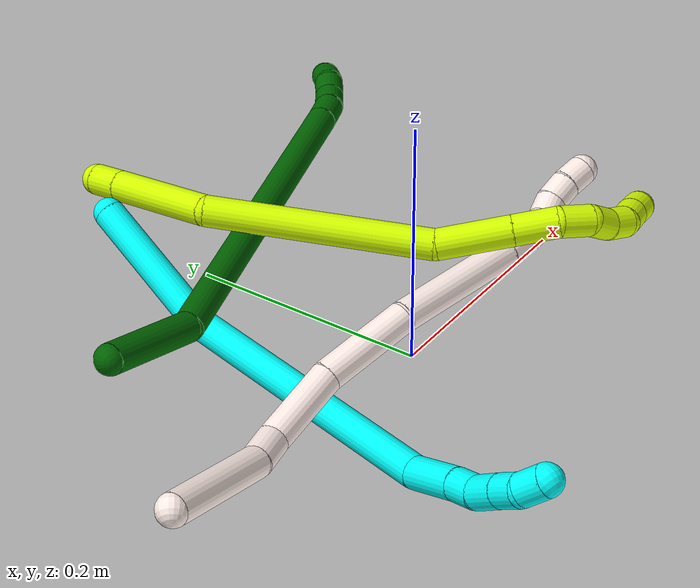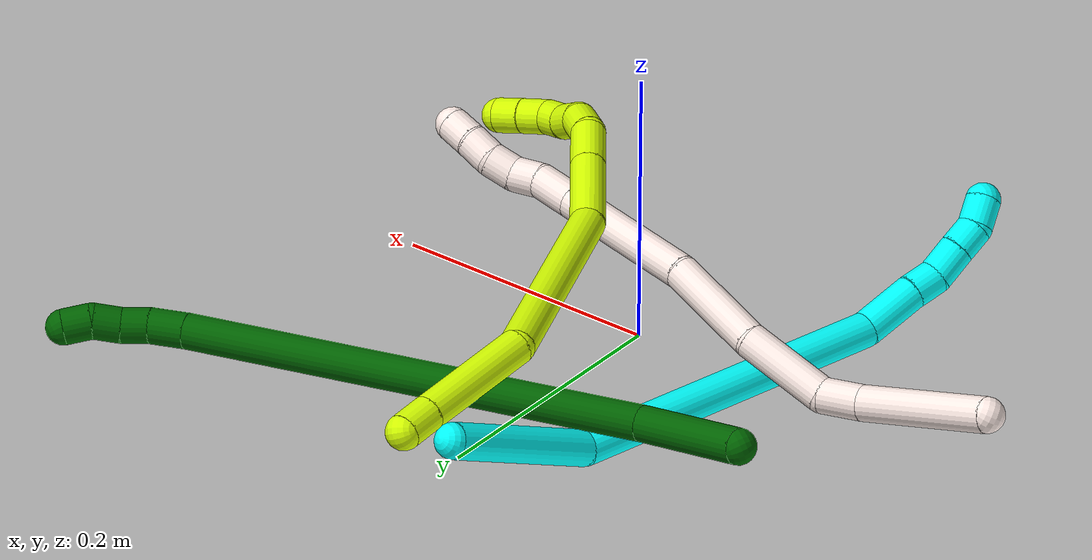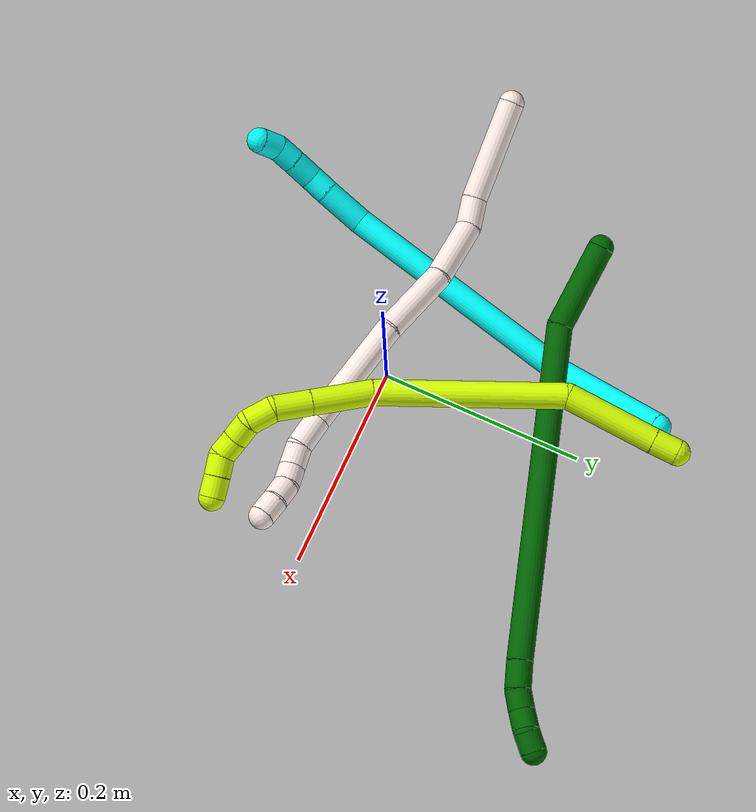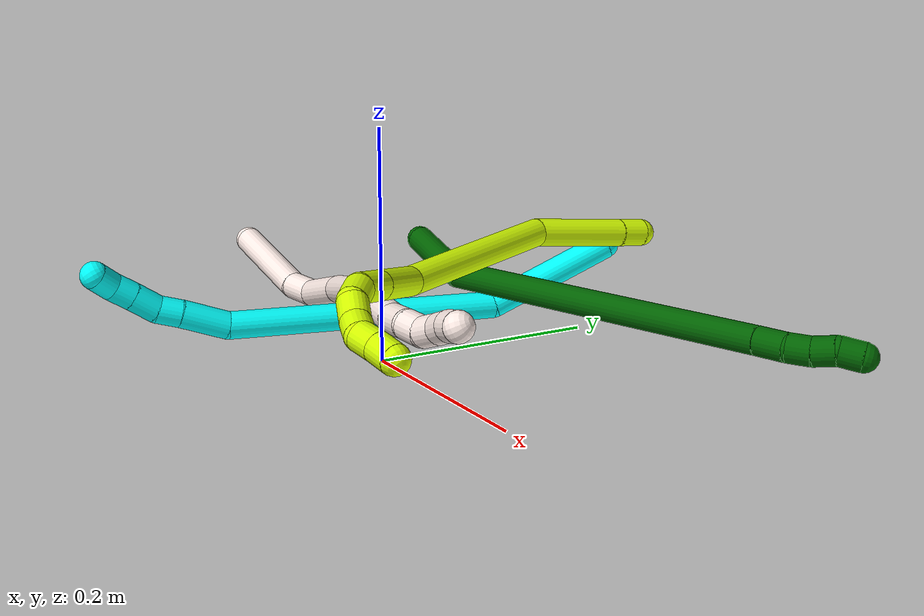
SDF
<sdf version="1.7">
 <world name="default">
  <model name="3">
   <static>0</static>
   <link name="3">
    <collision name="collision-cylinder-e_1_1_4">
     <pose>0.002173 -0.004572 -0.060671 3.06637 0.035703 0.886072</pose>
     <geometry><cylinder><radius>0.0125</radius><length>0.121763</length></cylinder></geometry>
     <surface>
      <friction><ode><mu>1.16</mu><mu2>1.16</mu2><slip1>0</slip1><slip2>0</slip2></ode></friction>
      <contact><ode><kp>1e+06</kp><kd>1</kd><max_vel>0</max_vel><min_depth>0.001</min_depth></ode></contact>
     </surface>
    </collision>
    <visual name="visual-cylinder-e_1_1_4">
     <pose>0.002173 -0.004572 -0.060671 3.06637 0.035703 0.886072</pose>
     <geometry><cylinder><radius>0.0125</radius><length>0.121763</length></cylinder></geometry>
     <material><ambient>0.003922 1 0.996078 1</ambient></material>
    </visual>
    <collision name="collision-cylinder-e_2_4_5">
     <pose>0.005239 -0.067726 -0.230075 2.64741 0.007229 0.028657</pose>
     <geometry><cylinder><radius>0.0125</radius><length>0.247027</length></cylinder></geometry>
     <surface>
      <friction><ode><mu>1.16</mu><mu2>1.16</mu2><slip1>0</slip1><slip2>0</slip2></ode></friction>
      <contact><ode><kp>1e+06</kp><kd>1</kd><max_vel>0</max_vel><min_depth>0.001</min_depth></ode></contact>
     </surface>
    </collision>
    <visual name="visual-cylinder-e_2_4_5">
     <pose>0.005239 -0.067726 -0.230075 2.64741 0.007229 0.028657</pose>
     <geometry><cylinder><radius>0.0125</radius><length>0.247027</length></cylinder></geometry>
     <material><ambient>0.003922 1 0.996078 1</ambient></material>
    </visual>
    <collision name="collision-cylinder-e_3_5_6">
     <pose>0.006134 -0.142408 -0.353583 2.31328 9.4e-05 0.000213</pose>
     <geometry><cylinder><radius>0.0125</radius><length>0.043704</length></cylinder></geometry>
     <surface>
      <friction><ode><mu>1.16</mu><mu2>1.16</mu2><slip1>0</slip1><slip2>0</slip2></ode></friction>
      <contact><ode><kp>1e+06</kp><kd>1</kd><max_vel>0</max_vel><min_depth>0.001</min_depth></ode></contact>
     </surface>
    </collision>
    <visual name="visual-cylinder-e_3_5_6">
     <pose>0.006134 -0.142408 -0.353583 2.31328 9.4e-05 0.000213</pose>
     <geometry><cylinder><radius>0.0125</radius><length>0.043704</length></cylinder></geometry>
     <material><ambient>0.003922 1 0.996078 1</ambient></material>
    </visual>
    <collision name="collision-cylinder-e_4_6_7">
     <pose>0.005655 -0.165745 -0.376116 2.39103 -0.045323 -0.114942</pose>
     <geometry><cylinder><radius>0.0125</radius><length>0.021242</length></cylinder></geometry>
     <surface>
      <friction><ode><mu>1.16</mu><mu2>1.16</mu2><slip1>0</slip1><slip2>0</slip2></ode></friction>
      <contact><ode><kp>1e+06</kp><kd>1</kd><max_vel>0</max_vel><min_depth>0.001</min_depth></ode></contact>
     </surface>
    </collision>
    <visual name="visual-cylinder-e_4_6_7">
     <pose>0.005655 -0.165745 -0.376116 2.39103 -0.045323 -0.114942</pose>
     <geometry><cylinder><radius>0.0125</radius><length>0.021242</length></cylinder></geometry>
     <material><ambient>0.003922 1 0.996078 1</ambient></material>
    </visual>
    <collision name="collision-cylinder-e_5_7_8">
     <pose>0.005589 -0.183951 -0.389752 2.06263 0.033377 0.055737</pose>
     <geometry><cylinder><radius>0.0125</radius><length>0.024904</length></cylinder></geometry>
     <surface>
      <friction><ode><mu>1.16</mu><mu2>1.16</mu2><slip1>0</slip1><slip2>0</slip2></ode></friction>
      <contact><ode><kp>1e+06</kp><kd>1</kd><max_vel>0</max_vel><min_depth>0.001</min_depth></ode></contact>
     </surface>
    </collision>
    <visual name="visual-cylinder-e_5_7_8">
     <pose>0.005589 -0.183951 -0.389752 2.06263 0.033377 0.055737</pose>
     <geometry><cylinder><radius>0.0125</radius><length>0.024904</length></cylinder></geometry>
     <material><ambient>0.003922 1 0.996078 1</ambient></material>
    </visual>
    <collision name="collision-cylinder-e_6_8_9">
     <pose>0.006397 -0.203597 -0.400663 2.09657 0.039041 0.067773</pose>
     <geometry><cylinder><radius>0.0125</radius><length>0.020076</length></cylinder></geometry>
     <surface>
      <friction><ode><mu>1.16</mu><mu2>1.16</mu2><slip1>0</slip1><slip2>0</slip2></ode></friction>
      <contact><ode><kp>1e+06</kp><kd>1</kd><max_vel>0</max_vel><min_depth>0.001</min_depth></ode></contact>
     </surface>
    </collision>
    <visual name="visual-cylinder-e_6_8_9">
     <pose>0.006397 -0.203597 -0.400663 2.09657 0.039041 0.067773</pose>
     <geometry><cylinder><radius>0.0125</radius><length>0.020076</length></cylinder></geometry>
     <material><ambient>0.003922 1 0.996078 1</ambient></material>
    </visual>
    <collision name="collision-cylinder-e_7_9_2">
     <pose>0.010757 -0.221573 -0.409015 1.91344 0.38216 0.535584</pose>
     <geometry><cylinder><radius>0.0125</radius><length>0.021285</length></cylinder></geometry>
     <surface>
      <friction><ode><mu>1.16</mu><mu2>1.16</mu2><slip1>0</slip1><slip2>0</slip2></ode></friction>
      <contact><ode><kp>1e+06</kp><kd>1</kd><max_vel>0</max_vel><min_depth>0.001</min_depth></ode></contact>
     </surface>
    </collision>
    <visual name="visual-cylinder-e_7_9_2">
     <pose>0.010757 -0.221573 -0.409015 1.91344 0.38216 0.535584</pose>
     <geometry><cylinder><radius>0.0125</radius><length>0.021285</length></cylinder></geometry>
     <material><ambient>0.003922 1 0.996078 1</ambient></material>
    </visual>
    <collision name="collision-sphere-2">
     <pose>0.014726 -0.230874 -0.412333 0 -0 0</pose>
     <geometry><sphere><radius>0.0125</radius></sphere></geometry>
     <surface>
      <friction><ode><mu>1.16</mu><mu2>1.16</mu2><slip1>0</slip1><slip2>0</slip2></ode></friction>
      <contact><ode><kp>1e+06</kp><kd>1</kd><max_vel>0</max_vel><min_depth>0.001</min_depth></ode></contact>
     </surface>
    </collision>
    <visual name="visual-sphere-2">
     <pose>0.014726 -0.230874 -0.412333 0 -0 0</pose>
     <geometry><sphere><radius>0.0125</radius></sphere></geometry>
     <material><ambient>0.003922 1 0.996078 1</ambient></material>
    </visual>
    <collision name="collision-sphere-9">
     <pose>0.006788 -0.212273 -0.405698 0 -0 0</pose>
     <geometry><sphere><radius>0.0125</radius></sphere></geometry>
     <surface>
      <friction><ode><mu>1.16</mu><mu2>1.16</mu2><slip1>0</slip1><slip2>0</slip2></ode></friction>
      <contact><ode><kp>1e+06</kp><kd>1</kd><max_vel>0</max_vel><min_depth>0.001</min_depth></ode></contact>
     </surface>
    </collision>
    <visual name="visual-sphere-9">
     <pose>0.006788 -0.212273 -0.405698 0 -0 0</pose>
     <geometry><sphere><radius>0.0125</radius></sphere></geometry>
     <material><ambient>0.003922 1 0.996078 1</ambient></material>
    </visual>
    <collision name="collision-sphere-4">
     <pose>0.004346 -0.009144 -0.121342 0 -0 0</pose>
     <geometry><sphere><radius>0.0125</radius></sphere></geometry>
     <surface>
      <friction><ode><mu>1.16</mu><mu2>1.16</mu2><slip1>0</slip1><slip2>0</slip2></ode></friction>
      <contact><ode><kp>1e+06</kp><kd>1</kd><max_vel>0</max_vel><min_depth>0.001</min_depth></ode></contact>
     </surface>
    </collision>
    <visual name="visual-sphere-4">
     <pose>0.004346 -0.009144 -0.121342 0 -0 0</pose>
     <geometry><sphere><radius>0.0125</radius></sphere></geometry>
     <material><ambient>0.003922 1 0.996078 1</ambient></material>
    </visual>
    <collision name="collision-sphere-1">
     <geometry><sphere><radius>0.0125</radius></sphere></geometry>
     <surface>
      <friction><ode><mu>1.16</mu><mu2>1.16</mu2><slip1>0</slip1><slip2>0</slip2></ode></friction>
      <contact><ode><kp>1e+06</kp><kd>1</kd><max_vel>0</max_vel><min_depth>0.001</min_depth></ode></contact>
     </surface>
    </collision>
    <visual name="visual-sphere-1">
     <geometry><sphere><radius>0.0125</radius></sphere></geometry>
     <material><ambient>0.003922 1 0.996078 1</ambient></material>
    </visual>
    <collision name="collision-sphere-8">
     <pose>0.006005 -0.194921 -0.395629 0 -0 0</pose>
     <geometry><sphere><radius>0.0125</radius></sphere></geometry>
     <surface>
      <friction><ode><mu>1.16</mu><mu2>1.16</mu2><slip1>0</slip1><slip2>0</slip2></ode></friction>
      <contact><ode><kp>1e+06</kp><kd>1</kd><max_vel>0</max_vel><min_depth>0.001</min_depth></ode></contact>
     </surface>
    </collision>
    <visual name="visual-sphere-8">
     <pose>0.006005 -0.194921 -0.395629 0 -0 0</pose>
     <geometry><sphere><radius>0.0125</radius></sphere></geometry>
     <material><ambient>0.003922 1 0.996078 1</ambient></material>
    </visual>
    <collision name="collision-sphere-5">
     <pose>0.006132 -0.126308 -0.338808 0 -0 0</pose>
     <geometry><sphere><radius>0.0125</radius></sphere></geometry>
     <surface>
      <friction><ode><mu>1.16</mu><mu2>1.16</mu2><slip1>0</slip1><slip2>0</slip2></ode></friction>
      <contact><ode><kp>1e+06</kp><kd>1</kd><max_vel>0</max_vel><min_depth>0.001</min_depth></ode></contact>
     </surface>
    </collision>
    <visual name="visual-sphere-5">
     <pose>0.006132 -0.126308 -0.338808 0 -0 0</pose>
     <geometry><sphere><radius>0.0125</radius></sphere></geometry>
     <material><ambient>0.003922 1 0.996078 1</ambient></material>
    </visual>
    <collision name="collision-sphere-6">
     <pose>0.006136 -0.158509 -0.368357 0 -0 0</pose>
     <geometry><sphere><radius>0.0125</radius></sphere></geometry>
     <surface>
      <friction><ode><mu>1.16</mu><mu2>1.16</mu2><slip1>0</slip1><slip2>0</slip2></ode></friction>
      <contact><ode><kp>1e+06</kp><kd>1</kd><max_vel>0</max_vel><min_depth>0.001</min_depth></ode></contact>
     </surface>
    </collision>
    <visual name="visual-sphere-6">
     <pose>0.006136 -0.158509 -0.368357 0 -0 0</pose>
     <geometry><sphere><radius>0.0125</radius></sphere></geometry>
     <material><ambient>0.003922 1 0.996078 1</ambient></material>
    </visual>
    <collision name="collision-sphere-7">
     <pose>0.005174 -0.172982 -0.383875 0 -0 0</pose>
     <geometry><sphere><radius>0.0125</radius></sphere></geometry>
     <surface>
      <friction><ode><mu>1.16</mu><mu2>1.16</mu2><slip1>0</slip1><slip2>0</slip2></ode></friction>
      <contact><ode><kp>1e+06</kp><kd>1</kd><max_vel>0</max_vel><min_depth>0.001</min_depth></ode></contact>
     </surface>
    </collision>
    <visual name="visual-sphere-7">
     <pose>0.005174 -0.172982 -0.383875 0 -0 0</pose>
     <geometry><sphere><radius>0.0125</radius></sphere></geometry>
     <material><ambient>0.003922 1 0.996078 1</ambient></material>
    </visual>
    <inertial>
     <pose>0.004887 -0.080832 -0.22824 0 -0 0</pose>
     <mass>0.5</mass>
     <inertia>
      <ixx>0.001537</ixx>
      <ixy>0</ixy>
      <ixz>0</ixz>
      <iyy>-0.001081</iyy>
      <iyz>0</iyz>
      <izz>0.000577</izz>
     </inertia>
    </inertial>
   </link>
   <pose>-0.044559 0.260784 0.061109 -1.07694 0.047853 -0.248272</pose>
  </model>
  <model name="6">
   <static>0</static>
   <link name="6">
    <collision name="collision-cylinder-e_1_1_4">
     <pose>0.019968 -0.030056 -0.022553 2.21454 0.488445 0.924959</pose>
     <geometry><cylinder><radius>0.0125</radius><length>0.085104</length></cylinder></geometry>
     <surface>
      <friction><ode><mu>1.16</mu><mu2>1.16</mu2><slip1>0</slip1><slip2>0</slip2></ode></friction>
      <contact><ode><kp>1e+06</kp><kd>1</kd><max_vel>0</max_vel><min_depth>0.001</min_depth></ode></contact>
     </surface>
    </collision>
    <visual name="visual-cylinder-e_1_1_4">
     <pose>0.019968 -0.030056 -0.022553 2.21454 0.488445 0.924959</pose>
     <geometry><cylinder><radius>0.0125</radius><length>0.085104</length></cylinder></geometry>
     <material><ambient>0 0.392157 0.003922 1</ambient></material>
    </visual>
    <collision name="collision-cylinder-e_2_4_5">
     <pose>0.133482 -0.118755 -0.166613 2.69193 0.606253 1.87887</pose>
     <geometry><cylinder><radius>0.0125</radius><length>0.328354</length></cylinder></geometry>
     <surface>
      <friction><ode><mu>1.16</mu><mu2>1.16</mu2><slip1>0</slip1><slip2>0</slip2></ode></friction>
      <contact><ode><kp>1e+06</kp><kd>1</kd><max_vel>0</max_vel><min_depth>0.001</min_depth></ode></contact>
     </surface>
    </collision>
    <visual name="visual-cylinder-e_2_4_5">
     <pose>0.133482 -0.118755 -0.166613 2.69193 0.606253 1.87887</pose>
     <geometry><cylinder><radius>0.0125</radius><length>0.328354</length></cylinder></geometry>
     <material><ambient>0 0.392157 0.003922 1</ambient></material>
    </visual>
    <collision name="collision-cylinder-e_3_5_6">
     <pose>0.234053 -0.181818 -0.298345 2.73359 0.562639 1.89899</pose>
     <geometry><cylinder><radius>0.0125</radius><length>0.026338</length></cylinder></geometry>
     <surface>
      <friction><ode><mu>1.16</mu><mu2>1.16</mu2><slip1>0</slip1><slip2>0</slip2></ode></friction>
      <contact><ode><kp>1e+06</kp><kd>1</kd><max_vel>0</max_vel><min_depth>0.001</min_depth></ode></contact>
     </surface>
    </collision>
    <visual name="visual-cylinder-e_3_5_6">
     <pose>0.234053 -0.181818 -0.298345 2.73359 0.562639 1.89899</pose>
     <geometry><cylinder><radius>0.0125</radius><length>0.026338</length></cylinder></geometry>
     <material><ambient>0 0.392157 0.003922 1</ambient></material>
    </visual>
    <collision name="collision-cylinder-e_4_6_7">
     <pose>0.245439 -0.18766 -0.317557 2.98462 0.446903 2.47521</pose>
     <geometry><cylinder><radius>0.0125</radius><length>0.02018</length></cylinder></geometry>
     <surface>
      <friction><ode><mu>1.16</mu><mu2>1.16</mu2><slip1>0</slip1><slip2>0</slip2></ode></friction>
      <contact><ode><kp>1e+06</kp><kd>1</kd><max_vel>0</max_vel><min_depth>0.001</min_depth></ode></contact>
     </surface>
    </collision>
    <visual name="visual-cylinder-e_4_6_7">
     <pose>0.245439 -0.18766 -0.317557 2.98462 0.446903 2.47521</pose>
     <geometry><cylinder><radius>0.0125</radius><length>0.02018</length></cylinder></geometry>
     <material><ambient>0 0.392157 0.003922 1</ambient></material>
    </visual>
    <collision name="collision-cylinder-e_5_7_8">
     <pose>0.255363 -0.189194 -0.334855 3.12818 0.589831 3.09743</pose>
     <geometry><cylinder><radius>0.0125</radius><length>0.020004</length></cylinder></geometry>
     <surface>
      <friction><ode><mu>1.16</mu><mu2>1.16</mu2><slip1>0</slip1><slip2>0</slip2></ode></friction>
      <contact><ode><kp>1e+06</kp><kd>1</kd><max_vel>0</max_vel><min_depth>0.001</min_depth></ode></contact>
     </surface>
    </collision>
    <visual name="visual-cylinder-e_5_7_8">
     <pose>0.255363 -0.189194 -0.334855 3.12818 0.589831 3.09743</pose>
     <geometry><cylinder><radius>0.0125</radius><length>0.020004</length></cylinder></geometry>
     <material><ambient>0 0.392157 0.003922 1</ambient></material>
    </visual>
    <collision name="collision-cylinder-e_6_8_2">
     <pose>0.263195 -0.190207 -0.352874 3.04897 0.228647 2.37436</pose>
     <geometry><cylinder><radius>0.0125</radius><length>0.02002</length></cylinder></geometry>
     <surface>
      <friction><ode><mu>1.16</mu><mu2>1.16</mu2><slip1>0</slip1><slip2>0</slip2></ode></friction>
      <contact><ode><kp>1e+06</kp><kd>1</kd><max_vel>0</max_vel><min_depth>0.001</min_depth></ode></contact>
     </surface>
    </collision>
    <visual name="visual-cylinder-e_6_8_2">
     <pose>0.263195 -0.190207 -0.352874 3.04897 0.228647 2.37436</pose>
     <geometry><cylinder><radius>0.0125</radius><length>0.02002</length></cylinder></geometry>
     <material><ambient>0 0.392157 0.003922 1</ambient></material>
    </visual>
    <collision name="collision-sphere-2">
     <pose>0.265464 -0.191109 -0.362582 0 -0 0</pose>
     <geometry><sphere><radius>0.0125</radius></sphere></geometry>
     <surface>
      <friction><ode><mu>1.16</mu><mu2>1.16</mu2><slip1>0</slip1><slip2>0</slip2></ode></friction>
      <contact><ode><kp>1e+06</kp><kd>1</kd><max_vel>0</max_vel><min_depth>0.001</min_depth></ode></contact>
     </surface>
    </collision>
    <visual name="visual-sphere-2">
     <pose>0.265464 -0.191109 -0.362582 0 -0 0</pose>
     <geometry><sphere><radius>0.0125</radius></sphere></geometry>
     <material><ambient>0 0.392157 0.003922 1</ambient></material>
    </visual>
    <collision name="collision-sphere-4">
     <pose>0.039935 -0.060111 -0.045106 0 -0 0</pose>
     <geometry><sphere><radius>0.0125</radius></sphere></geometry>
     <surface>
      <friction><ode><mu>1.16</mu><mu2>1.16</mu2><slip1>0</slip1><slip2>0</slip2></ode></friction>
      <contact><ode><kp>1e+06</kp><kd>1</kd><max_vel>0</max_vel><min_depth>0.001</min_depth></ode></contact>
     </surface>
    </collision>
    <visual name="visual-sphere-4">
     <pose>0.039935 -0.060111 -0.045106 0 -0 0</pose>
     <geometry><sphere><radius>0.0125</radius></sphere></geometry>
     <material><ambient>0 0.392157 0.003922 1</ambient></material>
    </visual>
    <collision name="collision-sphere-1">
     <geometry><sphere><radius>0.0125</radius></sphere></geometry>
     <surface>
      <friction><ode><mu>1.16</mu><mu2>1.16</mu2><slip1>0</slip1><slip2>0</slip2></ode></friction>
      <contact><ode><kp>1e+06</kp><kd>1</kd><max_vel>0</max_vel><min_depth>0.001</min_depth></ode></contact>
     </surface>
    </collision>
    <visual name="visual-sphere-1">
     <geometry><sphere><radius>0.0125</radius></sphere></geometry>
     <material><ambient>0 0.392157 0.003922 1</ambient></material>
    </visual>
    <collision name="collision-sphere-8">
     <pose>0.260926 -0.189305 -0.343167 0 -0 0</pose>
     <geometry><sphere><radius>0.0125</radius></sphere></geometry>
     <surface>
      <friction><ode><mu>1.16</mu><mu2>1.16</mu2><slip1>0</slip1><slip2>0</slip2></ode></friction>
      <contact><ode><kp>1e+06</kp><kd>1</kd><max_vel>0</max_vel><min_depth>0.001</min_depth></ode></contact>
     </surface>
    </collision>
    <visual name="visual-sphere-8">
     <pose>0.260926 -0.189305 -0.343167 0 -0 0</pose>
     <geometry><sphere><radius>0.0125</radius></sphere></geometry>
     <material><ambient>0 0.392157 0.003922 1</ambient></material>
    </visual>
    <collision name="collision-sphere-5">
     <pose>0.227029 -0.177398 -0.28812 0 -0 0</pose>
     <geometry><sphere><radius>0.0125</radius></sphere></geometry>
     <surface>
      <friction><ode><mu>1.16</mu><mu2>1.16</mu2><slip1>0</slip1><slip2>0</slip2></ode></friction>
      <contact><ode><kp>1e+06</kp><kd>1</kd><max_vel>0</max_vel><min_depth>0.001</min_depth></ode></contact>
     </surface>
    </collision>
    <visual name="visual-sphere-5">
     <pose>0.227029 -0.177398 -0.28812 0 -0 0</pose>
     <geometry><sphere><radius>0.0125</radius></sphere></geometry>
     <material><ambient>0 0.392157 0.003922 1</ambient></material>
    </visual>
    <collision name="collision-sphere-6">
     <pose>0.241078 -0.186237 -0.30857 0 -0 0</pose>
     <geometry><sphere><radius>0.0125</radius></sphere></geometry>
     <surface>
      <friction><ode><mu>1.16</mu><mu2>1.16</mu2><slip1>0</slip1><slip2>0</slip2></ode></friction>
      <contact><ode><kp>1e+06</kp><kd>1</kd><max_vel>0</max_vel><min_depth>0.001</min_depth></ode></contact>
     </surface>
    </collision>
    <visual name="visual-sphere-6">
     <pose>0.241078 -0.186237 -0.30857 0 -0 0</pose>
     <geometry><sphere><radius>0.0125</radius></sphere></geometry>
     <material><ambient>0 0.392157 0.003922 1</ambient></material>
    </visual>
    <collision name="collision-sphere-7">
     <pose>0.249799 -0.189082 -0.326544 0 -0 0</pose>
     <geometry><sphere><radius>0.0125</radius></sphere></geometry>
     <surface>
      <friction><ode><mu>1.16</mu><mu2>1.16</mu2><slip1>0</slip1><slip2>0</slip2></ode></friction>
      <contact><ode><kp>1e+06</kp><kd>1</kd><max_vel>0</max_vel><min_depth>0.001</min_depth></ode></contact>
     </surface>
    </collision>
    <visual name="visual-sphere-7">
     <pose>0.249799 -0.189082 -0.326544 0 -0 0</pose>
     <geometry><sphere><radius>0.0125</radius></sphere></geometry>
     <material><ambient>0 0.392157 0.003922 1</ambient></material>
    </visual>
    <inertial>
     <pose>0.134047 -0.115439 -0.169313 0 -0 0</pose>
     <mass>0.5</mass>
     <inertia>
      <ixx>0.00167</ixx>
      <ixy>0</ixy>
      <ixz>0</ixz>
      <iyy>0.003858</iyy>
      <iyz>0</iyz>
      <izz>-0.000647</izz>
     </inertia>
    </inertial>
   </link>
   <pose>-0.187648 0.13986 0.052293 1.05312 -0.876803 -0.180268</pose>
  </model>
  <model name="11">
   <static>0</static>
   <link name="11">
    <collision name="collision-cylinder-e_1_1_4">
     <pose>0.037412 0.014159 0.030133 -0.439263 0.843571 -0.19967</pose>
     <geometry><cylinder><radius>0.0125</radius><length>0.100163</length></cylinder></geometry>
     <surface>
      <friction><ode><mu>1.16</mu><mu2>1.16</mu2><slip1>0</slip1><slip2>0</slip2></ode></friction>
      <contact><ode><kp>1e+06</kp><kd>1</kd><max_vel>0</max_vel><min_depth>0.001</min_depth></ode></contact>
     </surface>
    </collision>
    <visual name="visual-cylinder-e_1_1_4">
     <pose>0.037412 0.014159 0.030133 -0.439263 0.843571 -0.19967</pose>
     <geometry><cylinder><radius>0.0125</radius><length>0.100163</length></cylinder></geometry>
     <material><ambient>1 0.933333 0.909804 1</ambient></material>
    </visual>
    <collision name="collision-cylinder-e_2_4_5">
     <pose>0.083309 0.031779 0.072064 -0.285404 0.604083 -0.089474</pose>
     <geometry><cylinder><radius>0.0125</radius><length>0.029876</length></cylinder></geometry>
     <surface>
      <friction><ode><mu>1.16</mu><mu2>1.16</mu2><slip1>0</slip1><slip2>0</slip2></ode></friction>
      <contact><ode><kp>1e+06</kp><kd>1</kd><max_vel>0</max_vel><min_depth>0.001</min_depth></ode></contact>
     </surface>
    </collision>
    <visual name="visual-cylinder-e_2_4_5">
     <pose>0.083309 0.031779 0.072064 -0.285404 0.604083 -0.089474</pose>
     <geometry><cylinder><radius>0.0125</radius><length>0.029876</length></cylinder></geometry>
     <material><ambient>1 0.933333 0.909804 1</ambient></material>
    </visual>
    <collision name="collision-cylinder-e_3_5_6">
     <pose>0.110659 0.028701 0.109667 0.248182 0.616501 0.079387</pose>
     <geometry><cylinder><radius>0.0125</radius><length>0.065259</length></cylinder></geometry>
     <surface>
      <friction><ode><mu>1.16</mu><mu2>1.16</mu2><slip1>0</slip1><slip2>0</slip2></ode></friction>
      <contact><ode><kp>1e+06</kp><kd>1</kd><max_vel>0</max_vel><min_depth>0.001</min_depth></ode></contact>
     </surface>
    </collision>
    <visual name="visual-cylinder-e_3_5_6">
     <pose>0.110659 0.028701 0.109667 0.248182 0.616501 0.079387</pose>
     <geometry><cylinder><radius>0.0125</radius><length>0.065259</length></cylinder></geometry>
     <material><ambient>1 0.933333 0.909804 1</ambient></material>
    </visual>
    <collision name="collision-cylinder-e_4_6_7">
     <pose>0.156523 0.011248 0.16063 0.409345 0.777615 0.169666</pose>
     <geometry><cylinder><radius>0.0125</radius><length>0.076962</length></cylinder></geometry>
     <surface>
      <friction><ode><mu>1.16</mu><mu2>1.16</mu2><slip1>0</slip1><slip2>0</slip2></ode></friction>
      <contact><ode><kp>1e+06</kp><kd>1</kd><max_vel>0</max_vel><min_depth>0.001</min_depth></ode></contact>
     </surface>
    </collision>
    <visual name="visual-cylinder-e_4_6_7">
     <pose>0.156523 0.011248 0.16063 0.409345 0.777615 0.169666</pose>
     <geometry><cylinder><radius>0.0125</radius><length>0.076962</length></cylinder></geometry>
     <material><ambient>1 0.933333 0.909804 1</ambient></material>
    </visual>
    <collision name="collision-cylinder-e_5_7_8">
     <pose>0.227666 -0.005689 0.220921 0.169766 0.891495 0.081268</pose>
     <geometry><cylinder><radius>0.0125</radius><length>0.113483</length></cylinder></geometry>
     <surface>
      <friction><ode><mu>1.16</mu><mu2>1.16</mu2><slip1>0</slip1><slip2>0</slip2></ode></friction>
      <contact><ode><kp>1e+06</kp><kd>1</kd><max_vel>0</max_vel><min_depth>0.001</min_depth></ode></contact>
     </surface>
    </collision>
    <visual name="visual-cylinder-e_5_7_8">
     <pose>0.227666 -0.005689 0.220921 0.169766 0.891495 0.081268</pose>
     <geometry><cylinder><radius>0.0125</radius><length>0.113483</length></cylinder></geometry>
     <material><ambient>1 0.933333 0.909804 1</ambient></material>
    </visual>
    <collision name="collision-cylinder-e_6_8_9">
     <pose>0.283162 -0.013583 0.266815 0.172213 0.804718 0.073438</pose>
     <geometry><cylinder><radius>0.0125</radius><length>0.031501</length></cylinder></geometry>
     <surface>
      <friction><ode><mu>1.16</mu><mu2>1.16</mu2><slip1>0</slip1><slip2>0</slip2></ode></friction>
      <contact><ode><kp>1e+06</kp><kd>1</kd><max_vel>0</max_vel><min_depth>0.001</min_depth></ode></contact>
     </surface>
    </collision>
    <visual name="visual-cylinder-e_6_8_9">
     <pose>0.283162 -0.013583 0.266815 0.172213 0.804718 0.073438</pose>
     <geometry><cylinder><radius>0.0125</radius><length>0.031501</length></cylinder></geometry>
     <material><ambient>1 0.933333 0.909804 1</ambient></material>
    </visual>
    <collision name="collision-cylinder-e_7_9_10">
     <pose>0.301439 -0.013691 0.285736 -0.212704 0.692477 -0.07699</pose>
     <geometry><cylinder><radius>0.0125</radius><length>0.0217</length></cylinder></geometry>
     <surface>
      <friction><ode><mu>1.16</mu><mu2>1.16</mu2><slip1>0</slip1><slip2>0</slip2></ode></friction>
      <contact><ode><kp>1e+06</kp><kd>1</kd><max_vel>0</max_vel><min_depth>0.001</min_depth></ode></contact>
     </surface>
    </collision>
    <visual name="visual-cylinder-e_7_9_10">
     <pose>0.301439 -0.013691 0.285736 -0.212704 0.692477 -0.07699</pose>
     <geometry><cylinder><radius>0.0125</radius><length>0.0217</length></cylinder></geometry>
     <material><ambient>1 0.933333 0.909804 1</ambient></material>
    </visual>
    <collision name="collision-cylinder-e_8_10_11">
     <pose>0.312484 -0.013184 0.303105 0.13554 0.417199 0.028733</pose>
     <geometry><cylinder><radius>0.0125</radius><length>0.020327</length></cylinder></geometry>
     <surface>
      <friction><ode><mu>1.16</mu><mu2>1.16</mu2><slip1>0</slip1><slip2>0</slip2></ode></friction>
      <contact><ode><kp>1e+06</kp><kd>1</kd><max_vel>0</max_vel><min_depth>0.001</min_depth></ode></contact>
     </surface>
    </collision>
    <visual name="visual-cylinder-e_8_10_11">
     <pose>0.312484 -0.013184 0.303105 0.13554 0.417199 0.028733</pose>
     <geometry><cylinder><radius>0.0125</radius><length>0.020327</length></cylinder></geometry>
     <material><ambient>1 0.933333 0.909804 1</ambient></material>
    </visual>
    <collision name="collision-cylinder-e_9_11_12">
     <pose>0.322355 -0.01743 0.320176 0.363319 0.599718 0.113462</pose>
     <geometry><cylinder><radius>0.0125</radius><length>0.020385</length></cylinder></geometry>
     <surface>
      <friction><ode><mu>1.16</mu><mu2>1.16</mu2><slip1>0</slip1><slip2>0</slip2></ode></friction>
      <contact><ode><kp>1e+06</kp><kd>1</kd><max_vel>0</max_vel><min_depth>0.001</min_depth></ode></contact>
     </surface>
    </collision>
    <visual name="visual-cylinder-e_9_11_12">
     <pose>0.322355 -0.01743 0.320176 0.363319 0.599718 0.113462</pose>
     <geometry><cylinder><radius>0.0125</radius><length>0.020385</length></cylinder></geometry>
     <material><ambient>1 0.933333 0.909804 1</ambient></material>
    </visual>
    <collision name="collision-cylinder-e_10_12_2">
     <pose>0.334985 -0.022902 0.335114 0.337478 0.74229 0.132407</pose>
     <geometry><cylinder><radius>0.0125</radius><length>0.020345</length></cylinder></geometry>
     <surface>
      <friction><ode><mu>1.16</mu><mu2>1.16</mu2><slip1>0</slip1><slip2>0</slip2></ode></friction>
      <contact><ode><kp>1e+06</kp><kd>1</kd><max_vel>0</max_vel><min_depth>0.001</min_depth></ode></contact>
     </surface>
    </collision>
    <visual name="visual-cylinder-e_10_12_2">
     <pose>0.334985 -0.022902 0.335114 0.337478 0.74229 0.132407</pose>
     <geometry><cylinder><radius>0.0125</radius><length>0.020345</length></cylinder></geometry>
     <material><ambient>1 0.933333 0.909804 1</ambient></material>
    </visual>
    <collision name="collision-sphere-2">
     <pose>0.341861 -0.025384 0.342188 0 -0 0</pose>
     <geometry><sphere><radius>0.0125</radius></sphere></geometry>
     <surface>
      <friction><ode><mu>1.16</mu><mu2>1.16</mu2><slip1>0</slip1><slip2>0</slip2></ode></friction>
      <contact><ode><kp>1e+06</kp><kd>1</kd><max_vel>0</max_vel><min_depth>0.001</min_depth></ode></contact>
     </surface>
    </collision>
    <visual name="visual-sphere-2">
     <pose>0.341861 -0.025384 0.342188 0 -0 0</pose>
     <geometry><sphere><radius>0.0125</radius></sphere></geometry>
     <material><ambient>1 0.933333 0.909804 1</ambient></material>
    </visual>
    <collision name="collision-sphere-12">
     <pose>0.328108 -0.02042 0.328041 0 -0 0</pose>
     <geometry><sphere><radius>0.0125</radius></sphere></geometry>
     <surface>
      <friction><ode><mu>1.16</mu><mu2>1.16</mu2><slip1>0</slip1><slip2>0</slip2></ode></friction>
      <contact><ode><kp>1e+06</kp><kd>1</kd><max_vel>0</max_vel><min_depth>0.001</min_depth></ode></contact>
     </surface>
    </collision>
    <visual name="visual-sphere-12">
     <pose>0.328108 -0.02042 0.328041 0 -0 0</pose>
     <geometry><sphere><radius>0.0125</radius></sphere></geometry>
     <material><ambient>1 0.933333 0.909804 1</ambient></material>
    </visual>
    <collision name="collision-sphere-11">
     <pose>0.316603 -0.014439 0.312311 0 -0 0</pose>
     <geometry><sphere><radius>0.0125</radius></sphere></geometry>
     <surface>
      <friction><ode><mu>1.16</mu><mu2>1.16</mu2><slip1>0</slip1><slip2>0</slip2></ode></friction>
      <contact><ode><kp>1e+06</kp><kd>1</kd><max_vel>0</max_vel><min_depth>0.001</min_depth></ode></contact>
     </surface>
    </collision>
    <visual name="visual-sphere-11">
     <pose>0.316603 -0.014439 0.312311 0 -0 0</pose>
     <geometry><sphere><radius>0.0125</radius></sphere></geometry>
     <material><ambient>1 0.933333 0.909804 1</ambient></material>
    </visual>
    <collision name="collision-sphere-10">
     <pose>0.308366 -0.011928 0.293898 0 -0 0</pose>
     <geometry><sphere><radius>0.0125</radius></sphere></geometry>
     <surface>
      <friction><ode><mu>1.16</mu><mu2>1.16</mu2><slip1>0</slip1><slip2>0</slip2></ode></friction>
      <contact><ode><kp>1e+06</kp><kd>1</kd><max_vel>0</max_vel><min_depth>0.001</min_depth></ode></contact>
     </surface>
    </collision>
    <visual name="visual-sphere-10">
     <pose>0.308366 -0.011928 0.293898 0 -0 0</pose>
     <geometry><sphere><radius>0.0125</radius></sphere></geometry>
     <material><ambient>1 0.933333 0.909804 1</ambient></material>
    </visual>
    <collision name="collision-sphere-9">
     <pose>0.294512 -0.015454 0.277573 0 -0 0</pose>
     <geometry><sphere><radius>0.0125</radius></sphere></geometry>
     <surface>
      <friction><ode><mu>1.16</mu><mu2>1.16</mu2><slip1>0</slip1><slip2>0</slip2></ode></friction>
      <contact><ode><kp>1e+06</kp><kd>1</kd><max_vel>0</max_vel><min_depth>0.001</min_depth></ode></contact>
     </surface>
    </collision>
    <visual name="visual-sphere-9">
     <pose>0.294512 -0.015454 0.277573 0 -0 0</pose>
     <geometry><sphere><radius>0.0125</radius></sphere></geometry>
     <material><ambient>1 0.933333 0.909804 1</ambient></material>
    </visual>
    <collision name="collision-sphere-4">
     <pose>0.074824 0.028318 0.060267 0 -0 0</pose>
     <geometry><sphere><radius>0.0125</radius></sphere></geometry>
     <surface>
      <friction><ode><mu>1.16</mu><mu2>1.16</mu2><slip1>0</slip1><slip2>0</slip2></ode></friction>
      <contact><ode><kp>1e+06</kp><kd>1</kd><max_vel>0</max_vel><min_depth>0.001</min_depth></ode></contact>
     </surface>
    </collision>
    <visual name="visual-sphere-4">
     <pose>0.074824 0.028318 0.060267 0 -0 0</pose>
     <geometry><sphere><radius>0.0125</radius></sphere></geometry>
     <material><ambient>1 0.933333 0.909804 1</ambient></material>
    </visual>
    <collision name="collision-sphere-1">
     <geometry><sphere><radius>0.0125</radius></sphere></geometry>
     <surface>
      <friction><ode><mu>1.16</mu><mu2>1.16</mu2><slip1>0</slip1><slip2>0</slip2></ode></friction>
      <contact><ode><kp>1e+06</kp><kd>1</kd><max_vel>0</max_vel><min_depth>0.001</min_depth></ode></contact>
     </surface>
    </collision>
    <visual name="visual-sphere-1">
     <geometry><sphere><radius>0.0125</radius></sphere></geometry>
     <material><ambient>1 0.933333 0.909804 1</ambient></material>
    </visual>
    <collision name="collision-sphere-8">
     <pose>0.271811 -0.011711 0.256056 0 -0 0</pose>
     <geometry><sphere><radius>0.0125</radius></sphere></geometry>
     <surface>
      <friction><ode><mu>1.16</mu><mu2>1.16</mu2><slip1>0</slip1><slip2>0</slip2></ode></friction>
      <contact><ode><kp>1e+06</kp><kd>1</kd><max_vel>0</max_vel><min_depth>0.001</min_depth></ode></contact>
     </surface>
    </collision>
    <visual name="visual-sphere-8">
     <pose>0.271811 -0.011711 0.256056 0 -0 0</pose>
     <geometry><sphere><radius>0.0125</radius></sphere></geometry>
     <material><ambient>1 0.933333 0.909804 1</ambient></material>
    </visual>
    <collision name="collision-sphere-5">
     <pose>0.091794 0.035241 0.08386 0 -0 0</pose>
     <geometry><sphere><radius>0.0125</radius></sphere></geometry>
     <surface>
      <friction><ode><mu>1.16</mu><mu2>1.16</mu2><slip1>0</slip1><slip2>0</slip2></ode></friction>
      <contact><ode><kp>1e+06</kp><kd>1</kd><max_vel>0</max_vel><min_depth>0.001</min_depth></ode></contact>
     </surface>
    </collision>
    <visual name="visual-sphere-5">
     <pose>0.091794 0.035241 0.08386 0 -0 0</pose>
     <geometry><sphere><radius>0.0125</radius></sphere></geometry>
     <material><ambient>1 0.933333 0.909804 1</ambient></material>
    </visual>
    <collision name="collision-sphere-6">
     <pose>0.129525 0.022162 0.135474 0 -0 0</pose>
     <geometry><sphere><radius>0.0125</radius></sphere></geometry>
     <surface>
      <friction><ode><mu>1.16</mu><mu2>1.16</mu2><slip1>0</slip1><slip2>0</slip2></ode></friction>
      <contact><ode><kp>1e+06</kp><kd>1</kd><max_vel>0</max_vel><min_depth>0.001</min_depth></ode></contact>
     </surface>
    </collision>
    <visual name="visual-sphere-6">
     <pose>0.129525 0.022162 0.135474 0 -0 0</pose>
     <geometry><sphere><radius>0.0125</radius></sphere></geometry>
     <material><ambient>1 0.933333 0.909804 1</ambient></material>
    </visual>
    <collision name="collision-sphere-7">
     <pose>0.18352 0.000334 0.185785 0 -0 0</pose>
     <geometry><sphere><radius>0.0125</radius></sphere></geometry>
     <surface>
      <friction><ode><mu>1.16</mu><mu2>1.16</mu2><slip1>0</slip1><slip2>0</slip2></ode></friction>
      <contact><ode><kp>1e+06</kp><kd>1</kd><max_vel>0</max_vel><min_depth>0.001</min_depth></ode></contact>
     </surface>
    </collision>
    <visual name="visual-sphere-7">
     <pose>0.18352 0.000334 0.185785 0 -0 0</pose>
     <geometry><sphere><radius>0.0125</radius></sphere></geometry>
     <material><ambient>1 0.933333 0.909804 1</ambient></material>
    </visual>
    <inertial>
     <pose>0.173079 0.005293 0.167745 0 -0 0</pose>
     <mass>0.5</mass>
     <inertia>
      <ixx>0.000225</ixx>
      <ixy>0</ixy>
      <ixz>0</ixz>
      <iyy>0.000286</iyy>
      <iyz>0</iyz>
      <izz>-0.000183</izz>
     </inertia>
    </inertial>
   </link>
   <pose>-0.289462 0.00057 0.047271 -1.06117 0.410654 -0.710794</pose>
  </model>
  <model name="15">
   <static>0</static>
   <link name="15">
    <collision name="collision-cylinder-e_1_1_4">
     <pose>-0.011898 -0.002886 -0.002406 2.26585 -1.2649 -2.00462</pose>
     <geometry><cylinder><radius>0.0125</radius><length>0.024955</length></cylinder></geometry>
     <surface>
      <friction><ode><mu>1.16</mu><mu2>1.16</mu2><slip1>0</slip1><slip2>0</slip2></ode></friction>
      <contact><ode><kp>1e+06</kp><kd>1</kd><max_vel>0</max_vel><min_depth>0.001</min_depth></ode></contact>
     </surface>
    </collision>
    <visual name="visual-cylinder-e_1_1_4">
     <pose>-0.011898 -0.002886 -0.002406 2.26585 -1.2649 -2.00462</pose>
     <geometry><cylinder><radius>0.0125</radius><length>0.024955</length></cylinder></geometry>
     <material><ambient>0.835294 1 0 1</ambient></material>
    </visual>
    <collision name="collision-cylinder-e_2_4_5">
     <pose>-0.066216 -0.016125 -0.014769 2.33663 -1.24429 -2.07016</pose>
     <geometry><cylinder><radius>0.0125</radius><length>0.089571</length></cylinder></geometry>
     <surface>
      <friction><ode><mu>1.16</mu><mu2>1.16</mu2><slip1>0</slip1><slip2>0</slip2></ode></friction>
      <contact><ode><kp>1e+06</kp><kd>1</kd><max_vel>0</max_vel><min_depth>0.001</min_depth></ode></contact>
     </surface>
    </collision>
    <visual name="visual-cylinder-e_2_4_5">
     <pose>-0.066216 -0.016125 -0.014769 2.33663 -1.24429 -2.07016</pose>
     <geometry><cylinder><radius>0.0125</radius><length>0.089571</length></cylinder></geometry>
     <material><ambient>0.835294 1 0 1</ambient></material>
    </visual>
    <collision name="collision-cylinder-e_3_5_6">
     <pose>-0.195442 -0.043495 -0.003217 0.669299 -1.26479 -0.499004</pose>
     <geometry><cylinder><radius>0.0125</radius><length>0.182072</length></cylinder></geometry>
     <surface>
      <friction><ode><mu>1.16</mu><mu2>1.16</mu2><slip1>0</slip1><slip2>0</slip2></ode></friction>
      <contact><ode><kp>1e+06</kp><kd>1</kd><max_vel>0</max_vel><min_depth>0.001</min_depth></ode></contact>
     </surface>
    </collision>
    <visual name="visual-cylinder-e_3_5_6">
     <pose>-0.195442 -0.043495 -0.003217 0.669299 -1.26479 -0.499004</pose>
     <geometry><cylinder><radius>0.0125</radius><length>0.182072</length></cylinder></geometry>
     <material><ambient>0.835294 1 0 1</ambient></material>
    </visual>
    <collision name="collision-cylinder-e_4_6_7">
     <pose>-0.31015 -0.056572 0.028855 -0.356788 -1.18678 0.242043</pose>
     <geometry><cylinder><radius>0.0125</radius><length>0.060185</length></cylinder></geometry>
     <surface>
      <friction><ode><mu>1.16</mu><mu2>1.16</mu2><slip1>0</slip1><slip2>0</slip2></ode></friction>
      <contact><ode><kp>1e+06</kp><kd>1</kd><max_vel>0</max_vel><min_depth>0.001</min_depth></ode></contact>
     </surface>
    </collision>
    <visual name="visual-cylinder-e_4_6_7">
     <pose>-0.31015 -0.056572 0.028855 -0.356788 -1.18678 0.242043</pose>
     <geometry><cylinder><radius>0.0125</radius><length>0.060185</length></cylinder></geometry>
     <material><ambient>0.835294 1 0 1</ambient></material>
    </visual>
    <collision name="collision-cylinder-e_5_7_8">
     <pose>-0.35455 -0.050295 0.04569 -0.357097 -1.18541 0.241901</pose>
     <geometry><cylinder><radius>0.0125</radius><length>0.035612</length></cylinder></geometry>
     <surface>
      <friction><ode><mu>1.16</mu><mu2>1.16</mu2><slip1>0</slip1><slip2>0</slip2></ode></friction>
      <contact><ode><kp>1e+06</kp><kd>1</kd><max_vel>0</max_vel><min_depth>0.001</min_depth></ode></contact>
     </surface>
    </collision>
    <visual name="visual-cylinder-e_5_7_8">
     <pose>-0.35455 -0.050295 0.04569 -0.357097 -1.18541 0.241901</pose>
     <geometry><cylinder><radius>0.0125</radius><length>0.035612</length></cylinder></geometry>
     <material><ambient>0.835294 1 0 1</ambient></material>
    </visual>
    <collision name="collision-cylinder-e_6_8_9">
     <pose>-0.38079 -0.04826 0.060788 0.034528 -0.834208 -0.015301</pose>
     <geometry><cylinder><radius>0.0125</radius><length>0.026295</length></cylinder></geometry>
     <surface>
      <friction><ode><mu>1.16</mu><mu2>1.16</mu2><slip1>0</slip1><slip2>0</slip2></ode></friction>
      <contact><ode><kp>1e+06</kp><kd>1</kd><max_vel>0</max_vel><min_depth>0.001</min_depth></ode></contact>
     </surface>
    </collision>
    <visual name="visual-cylinder-e_6_8_9">
     <pose>-0.38079 -0.04826 0.060788 0.034528 -0.834208 -0.015301</pose>
     <geometry><cylinder><radius>0.0125</radius><length>0.026295</length></cylinder></geometry>
     <material><ambient>0.835294 1 0 1</ambient></material>
    </visual>
    <collision name="collision-cylinder-e_7_9_10">
     <pose>-0.394325 -0.05103 0.079166 0.2526 -0.36735 -0.047168</pose>
     <geometry><cylinder><radius>0.0125</radius><length>0.021138</length></cylinder></geometry>
     <surface>
      <friction><ode><mu>1.16</mu><mu2>1.16</mu2><slip1>0</slip1><slip2>0</slip2></ode></friction>
      <contact><ode><kp>1e+06</kp><kd>1</kd><max_vel>0</max_vel><min_depth>0.001</min_depth></ode></contact>
     </surface>
    </collision>
    <visual name="visual-cylinder-e_7_9_10">
     <pose>-0.394325 -0.05103 0.079166 0.2526 -0.36735 -0.047168</pose>
     <geometry><cylinder><radius>0.0125</radius><length>0.021138</length></cylinder></geometry>
     <material><ambient>0.835294 1 0 1</ambient></material>
    </visual>
    <collision name="collision-cylinder-e_8_10_11">
     <pose>-0.402512 -0.053194 0.097728 -0.033422 -0.453251 0.007707</pose>
     <geometry><cylinder><radius>0.0125</radius><length>0.020058</length></cylinder></geometry>
     <surface>
      <friction><ode><mu>1.16</mu><mu2>1.16</mu2><slip1>0</slip1><slip2>0</slip2></ode></friction>
      <contact><ode><kp>1e+06</kp><kd>1</kd><max_vel>0</max_vel><min_depth>0.001</min_depth></ode></contact>
     </surface>
    </collision>
    <visual name="visual-cylinder-e_8_10_11">
     <pose>-0.402512 -0.053194 0.097728 -0.033422 -0.453251 0.007707</pose>
     <geometry><cylinder><radius>0.0125</radius><length>0.020058</length></cylinder></geometry>
     <material><ambient>0.835294 1 0 1</ambient></material>
    </visual>
    <collision name="collision-cylinder-e_9_11_12">
     <pose>-0.406893 -0.050459 0.116469 -0.245043 0.001019 -0.000125</pose>
     <geometry><cylinder><radius>0.0125</radius><length>0.020061</length></cylinder></geometry>
     <surface>
      <friction><ode><mu>1.16</mu><mu2>1.16</mu2><slip1>0</slip1><slip2>0</slip2></ode></friction>
      <contact><ode><kp>1e+06</kp><kd>1</kd><max_vel>0</max_vel><min_depth>0.001</min_depth></ode></contact>
     </surface>
    </collision>
    <visual name="visual-cylinder-e_9_11_12">
     <pose>-0.406893 -0.050459 0.116469 -0.245043 0.001019 -0.000125</pose>
     <geometry><cylinder><radius>0.0125</radius><length>0.020061</length></cylinder></geometry>
     <material><ambient>0.835294 1 0 1</ambient></material>
    </visual>
    <collision name="collision-cylinder-e_10_12_2">
     <pose>-0.407181 -0.04601 0.136018 -0.202498 -0.029704 0.003018</pose>
     <geometry><cylinder><radius>0.0125</radius><length>0.020054</length></cylinder></geometry>
     <surface>
      <friction><ode><mu>1.16</mu><mu2>1.16</mu2><slip1>0</slip1><slip2>0</slip2></ode></friction>
      <contact><ode><kp>1e+06</kp><kd>1</kd><max_vel>0</max_vel><min_depth>0.001</min_depth></ode></contact>
     </surface>
    </collision>
    <visual name="visual-cylinder-e_10_12_2">
     <pose>-0.407181 -0.04601 0.136018 -0.202498 -0.029704 0.003018</pose>
     <geometry><cylinder><radius>0.0125</radius><length>0.020054</length></cylinder></geometry>
     <material><ambient>0.835294 1 0 1</ambient></material>
    </visual>
    <collision name="collision-sphere-2">
     <pose>-0.407479 -0.043995 0.145836 0 -0 0</pose>
     <geometry><sphere><radius>0.0125</radius></sphere></geometry>
     <surface>
      <friction><ode><mu>1.16</mu><mu2>1.16</mu2><slip1>0</slip1><slip2>0</slip2></ode></friction>
      <contact><ode><kp>1e+06</kp><kd>1</kd><max_vel>0</max_vel><min_depth>0.001</min_depth></ode></contact>
     </surface>
    </collision>
    <visual name="visual-sphere-2">
     <pose>-0.407479 -0.043995 0.145836 0 -0 0</pose>
     <geometry><sphere><radius>0.0125</radius></sphere></geometry>
     <material><ambient>0.835294 1 0 1</ambient></material>
    </visual>
    <collision name="collision-sphere-12">
     <pose>-0.406883 -0.048026 0.1262 0 -0 0</pose>
     <geometry><sphere><radius>0.0125</radius></sphere></geometry>
     <surface>
      <friction><ode><mu>1.16</mu><mu2>1.16</mu2><slip1>0</slip1><slip2>0</slip2></ode></friction>
      <contact><ode><kp>1e+06</kp><kd>1</kd><max_vel>0</max_vel><min_depth>0.001</min_depth></ode></contact>
     </surface>
    </collision>
    <visual name="visual-sphere-12">
     <pose>-0.406883 -0.048026 0.1262 0 -0 0</pose>
     <geometry><sphere><radius>0.0125</radius></sphere></geometry>
     <material><ambient>0.835294 1 0 1</ambient></material>
    </visual>
    <collision name="collision-sphere-11">
     <pose>-0.406903 -0.052893 0.106739 0 -0 0</pose>
     <geometry><sphere><radius>0.0125</radius></sphere></geometry>
     <surface>
      <friction><ode><mu>1.16</mu><mu2>1.16</mu2><slip1>0</slip1><slip2>0</slip2></ode></friction>
      <contact><ode><kp>1e+06</kp><kd>1</kd><max_vel>0</max_vel><min_depth>0.001</min_depth></ode></contact>
     </surface>
    </collision>
    <visual name="visual-sphere-11">
     <pose>-0.406903 -0.052893 0.106739 0 -0 0</pose>
     <geometry><sphere><radius>0.0125</radius></sphere></geometry>
     <material><ambient>0.835294 1 0 1</ambient></material>
    </visual>
    <collision name="collision-sphere-10">
     <pose>-0.39812 -0.053495 0.088716 0 -0 0</pose>
     <geometry><sphere><radius>0.0125</radius></sphere></geometry>
     <surface>
      <friction><ode><mu>1.16</mu><mu2>1.16</mu2><slip1>0</slip1><slip2>0</slip2></ode></friction>
      <contact><ode><kp>1e+06</kp><kd>1</kd><max_vel>0</max_vel><min_depth>0.001</min_depth></ode></contact>
     </surface>
    </collision>
    <visual name="visual-sphere-10">
     <pose>-0.39812 -0.053495 0.088716 0 -0 0</pose>
     <geometry><sphere><radius>0.0125</radius></sphere></geometry>
     <material><ambient>0.835294 1 0 1</ambient></material>
    </visual>
    <collision name="collision-sphere-9">
     <pose>-0.390529 -0.048565 0.069615 0 -0 0</pose>
     <geometry><sphere><radius>0.0125</radius></sphere></geometry>
     <surface>
      <friction><ode><mu>1.16</mu><mu2>1.16</mu2><slip1>0</slip1><slip2>0</slip2></ode></friction>
      <contact><ode><kp>1e+06</kp><kd>1</kd><max_vel>0</max_vel><min_depth>0.001</min_depth></ode></contact>
     </surface>
    </collision>
    <visual name="visual-sphere-9">
     <pose>-0.390529 -0.048565 0.069615 0 -0 0</pose>
     <geometry><sphere><radius>0.0125</radius></sphere></geometry>
     <material><ambient>0.835294 1 0 1</ambient></material>
    </visual>
    <collision name="collision-sphere-4">
     <pose>-0.023797 -0.005772 -0.004813 0 -0 0</pose>
     <geometry><sphere><radius>0.0125</radius></sphere></geometry>
     <surface>
      <friction><ode><mu>1.16</mu><mu2>1.16</mu2><slip1>0</slip1><slip2>0</slip2></ode></friction>
      <contact><ode><kp>1e+06</kp><kd>1</kd><max_vel>0</max_vel><min_depth>0.001</min_depth></ode></contact>
     </surface>
    </collision>
    <visual name="visual-sphere-4">
     <pose>-0.023797 -0.005772 -0.004813 0 -0 0</pose>
     <geometry><sphere><radius>0.0125</radius></sphere></geometry>
     <material><ambient>0.835294 1 0 1</ambient></material>
    </visual>
    <collision name="collision-sphere-1">
     <geometry><sphere><radius>0.0125</radius></sphere></geometry>
     <surface>
      <friction><ode><mu>1.16</mu><mu2>1.16</mu2><slip1>0</slip1><slip2>0</slip2></ode></friction>
      <contact><ode><kp>1e+06</kp><kd>1</kd><max_vel>0</max_vel><min_depth>0.001</min_depth></ode></contact>
     </surface>
    </collision>
    <visual name="visual-sphere-1">
     <geometry><sphere><radius>0.0125</radius></sphere></geometry>
     <material><ambient>0.835294 1 0 1</ambient></material>
    </visual>
    <collision name="collision-sphere-8">
     <pose>-0.37105 -0.047955 0.051961 0 -0 0</pose>
     <geometry><sphere><radius>0.0125</radius></sphere></geometry>
     <surface>
      <friction><ode><mu>1.16</mu><mu2>1.16</mu2><slip1>0</slip1><slip2>0</slip2></ode></friction>
      <contact><ode><kp>1e+06</kp><kd>1</kd><max_vel>0</max_vel><min_depth>0.001</min_depth></ode></contact>
     </surface>
    </collision>
    <visual name="visual-sphere-8">
     <pose>-0.37105 -0.047955 0.051961 0 -0 0</pose>
     <geometry><sphere><radius>0.0125</radius></sphere></geometry>
     <material><ambient>0.835294 1 0 1</ambient></material>
    </visual>
    <collision name="collision-sphere-5">
     <pose>-0.108635 -0.026479 -0.024726 0 -0 0</pose>
     <geometry><sphere><radius>0.0125</radius></sphere></geometry>
     <surface>
      <friction><ode><mu>1.16</mu><mu2>1.16</mu2><slip1>0</slip1><slip2>0</slip2></ode></friction>
      <contact><ode><kp>1e+06</kp><kd>1</kd><max_vel>0</max_vel><min_depth>0.001</min_depth></ode></contact>
     </surface>
    </collision>
    <visual name="visual-sphere-5">
     <pose>-0.108635 -0.026479 -0.024726 0 -0 0</pose>
     <geometry><sphere><radius>0.0125</radius></sphere></geometry>
     <material><ambient>0.835294 1 0 1</ambient></material>
    </visual>
    <collision name="collision-sphere-6">
     <pose>-0.282249 -0.06051 0.018291 0 -0 0</pose>
     <geometry><sphere><radius>0.0125</radius></sphere></geometry>
     <surface>
      <friction><ode><mu>1.16</mu><mu2>1.16</mu2><slip1>0</slip1><slip2>0</slip2></ode></friction>
      <contact><ode><kp>1e+06</kp><kd>1</kd><max_vel>0</max_vel><min_depth>0.001</min_depth></ode></contact>
     </surface>
    </collision>
    <visual name="visual-sphere-6">
     <pose>-0.282249 -0.06051 0.018291 0 -0 0</pose>
     <geometry><sphere><radius>0.0125</radius></sphere></geometry>
     <material><ambient>0.835294 1 0 1</ambient></material>
    </visual>
    <collision name="collision-sphere-7">
     <pose>-0.338051 -0.052635 0.039419 0 -0 0</pose>
     <geometry><sphere><radius>0.0125</radius></sphere></geometry>
     <surface>
      <friction><ode><mu>1.16</mu><mu2>1.16</mu2><slip1>0</slip1><slip2>0</slip2></ode></friction>
      <contact><ode><kp>1e+06</kp><kd>1</kd><max_vel>0</max_vel><min_depth>0.001</min_depth></ode></contact>
     </surface>
    </collision>
    <visual name="visual-sphere-7">
     <pose>-0.338051 -0.052635 0.039419 0 -0 0</pose>
     <geometry><sphere><radius>0.0125</radius></sphere></geometry>
     <material><ambient>0.835294 1 0 1</ambient></material>
    </visual>
    <inertial>
     <pose>-0.231709 -0.039962 0.023382 0 -0 0</pose>
     <mass>0.5</mass>
     <inertia><ixx>2e-05</ixx><ixy>0</ixy><ixz>0</ixz><iyy>0.000497</iyy><iyz>0</iyz><izz>0.000694</izz></inertia>
    </inertial>
   </link>
   <pose>-0.025399 0.287716 0.07393 2.01767 0.232997 1.83354</pose>
  </model>
 </world>
</sdf>
